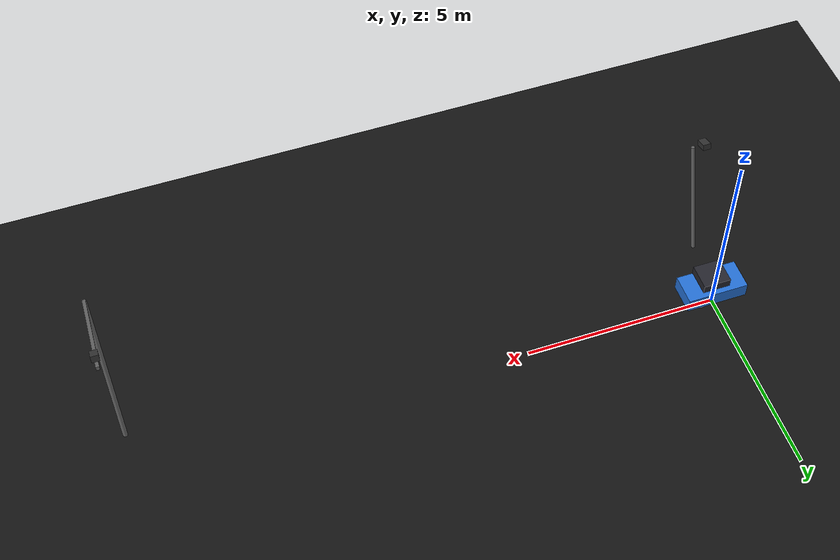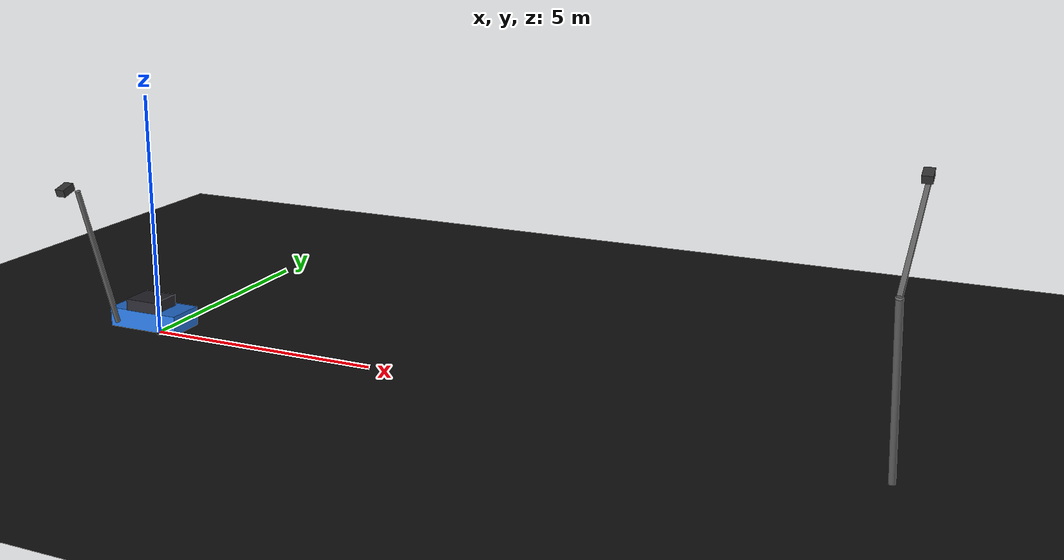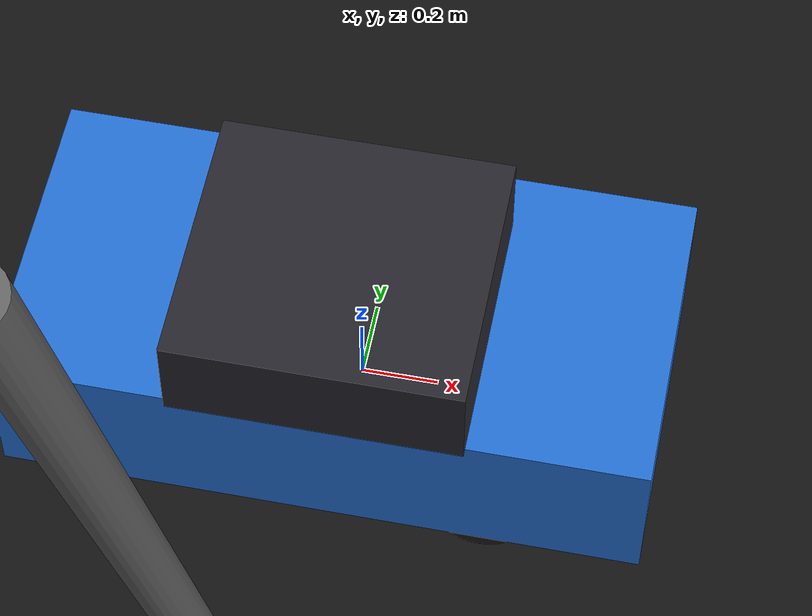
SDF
<sdf version="1.6">
 <world name="room_layout">
  <physics type="ode">
   <real_time_update_rate>1000.0</real_time_update_rate>
   <max_step>0.001</max_step>
   <real_time_factor>1</real_time_factor>
   <ode>
    <solver>
     <type>quick</type>
     <iters>150</iters>
     <precon_iters>0</precon_iters>
     <sor>1.400000</sor>
     <use_dynamic_moi_rescaling>1</use_dynamic_moi_rescaling>
    </solver>
    <constraints>
     <cfm>0.00001</cfm>
     <erp>0.2</erp>
     <contact_max_correcting_vel>2000.0</contact_max_correcting_vel>
     <contact_surface_layer>0.01000</contact_surface_layer>
    </constraints>
   </ode>
  </physics>
  <scene><ambient>0.6 0.6 0.6 1</ambient><background>0.7 0.7 0.7 1</background><shadows>true</shadows></scene>
  <light name="sun" type="directional">
   <pose>0 0 10 0 0 0</pose>
   <diffuse>0.8 0.8 0.8 1</diffuse>
   <specular>0.2 0.2 0.2 1</specular>
   <attenuation>
    <range>1000</range>
    <constant>0.9</constant>
    <linear>0.01</linear>
    <quadratic>0.001</quadratic>
   </attenuation>
   <direction>-0.5 0.1 -0.9</direction>
  </light>
  <model name="ground_plane">
   <static>true</static>
   <link name="link">
    <collision name="collision">
     <geometry><plane><normal>0 0 1</normal><size>200 200</size></plane></geometry>
    </collision>
    <visual name="visual">
     <geometry><plane><normal>0 0 1</normal><size>200 200</size></plane></geometry>
     <material>
      <ambient>0.05 0.05 0.05 1</ambient>
      <diffuse>0.08 0.08 0.08 1</diffuse>
      <specular>0.0 0.0 0.0 1</specular>
     </material>
    </visual>
   </link>
  </model>
  <model name="smart_car_1">
   <pose>0 -0.15 0.15 0 0 0</pose>
   <link name="chassis">
    <inertial>
     <mass>80.00</mass>
     <inertia><ixx>2.1333</ixx><ixy>0</ixy><iyy>17.0667</iyy><ixz>0</ixz><iyz>0</iyz><izz>17.0667</izz></inertia>
    </inertial>
    <collision name="chassis_collision">
     <pose>0 0 0.2500 0 0 0</pose>
     <geometry><box><size>1.600 0.800 0.400</size></box></geometry>
    </collision>
    <visual name="chassis_body">
     <pose>0 0 0.2500 0 0 0</pose>
     <geometry><box><size>1.600 0.800 0.400</size></box></geometry>
     <material><ambient>0.150 0.450 0.850 1</ambient><diffuse>0.150 0.450 0.850 1</diffuse></material>
    </visual>
    <visual name="cabin">
     <pose>0 -0.0800 0.5700 0 0 0</pose>
     <geometry><box><size>0.720 0.680 0.240</size></box></geometry>
     <material><ambient>0.1 0.1 0.12 1</ambient><diffuse>0.15 0.15 0.18 1</diffuse></material>
    </visual>
    <sensor name="camera" type="camera">
     <pose>0.6400 0 0.4800 0 0.3 0</pose>
     <always_on>true</always_on>
     <update_rate>30</update_rate>
     <visualize>true</visualize>
     <camera name="front_camera">
      <horizontal_fov>1.2</horizontal_fov>
      <image><width>640</width><height>480</height><format>R8G8B8</format></image>
      <clip><near>0.05</near><far>100</far></clip>
     </camera>
     <plugin name="gazebo_ros_camera" filename="libgazebo_ros_camera.so">
      <ros>
       <namespace>/smart_car_1</namespace>
       <remapping>~/image_raw:=camera/image_raw</remapping>
       <remapping>~/camera_info:=camera/camera_info</remapping>
      </ros>
      <camera_name>camera</camera_name>
      <frame_name>smart_car_1/camera_link</frame_name>
     </plugin>
    </sensor>
    <sensor name="lidar" type="ray">
     <pose>0.1600 0 0.5500 0 0 0</pose>
     <always_on>true</always_on>
     <update_rate>10</update_rate>
     <visualize>true</visualize>
     <ray>
      <scan>
       <horizontal>
        <samples>360</samples>
        <resolution>1</resolution>
        <min_angle>-3.14159</min_angle>
        <max_angle>3.14159</max_angle>
       </horizontal>
      </scan>
      <range><min>0.12</min><max>30.0</max><resolution>0.01</resolution></range>
      <noise><type>gaussian</type><mean>0.0</mean><stddev>0.01</stddev></noise>
     </ray>
     <plugin name="gazebo_ros_ray_sensor" filename="libgazebo_ros_ray_sensor.so">
      <ros><namespace>/smart_car_1</namespace><remapping>~/out:=scan</remapping></ros>
      <output_type>sensor_msgs/LaserScan</output_type>
      <frame_name>smart_car_1/lidar_link</frame_name>
     </plugin>
    </sensor>
    <sensor name="imu_sensor" type="imu">
     <pose>0 0 0.2000 0 0 0</pose>
     <always_on>true</always_on>
     <update_rate>200</update_rate>
     <plugin name="gazebo_ros_imu_sensor" filename="libgazebo_ros_imu_sensor.so">
      <ros><namespace>/smart_car_1</namespace><remapping>~/out:=imu/data</remapping></ros>
      <frame_name>smart_car_1/imu_link</frame_name>
      <initial_orientation_as_reference>false</initial_orientation_as_reference>
     </plugin>
    </sensor>
   </link>
   <link name="left_wheel_link">
    <pose>0.4000 0.3500 0.1000 0 0 0</pose>
    <inertial>
     <mass>2.00</mass>
     <inertia>
      <ixx>0.005067</ixx>
      <iyy>0.010000</iyy>
      <izz>0.005067</izz>
      <ixy>0</ixy>
      <ixz>0</ixz>
      <iyz>0</iyz>
     </inertia>
    </inertial>
    <collision name="collision">
     <pose>0 0 0 1.5707963 0 0</pose>
     <geometry><cylinder><radius>0.1000</radius><length>0.0800</length></cylinder></geometry>
     <surface>
      <friction><ode><mu>1.0</mu><mu2>1.0</mu2></ode></friction>
      <contact><ode><min_depth>0.001</min_depth><kp>1e8</kp></ode></contact>
     </surface>
    </collision>
    <visual name="visual">
     <pose>0 0 0 1.5707963 0 0</pose>
     <geometry><cylinder><radius>0.1000</radius><length>0.0800</length></cylinder></geometry>
     <material><ambient>0.05 0.05 0.05 1</ambient><diffuse>0.1 0.1 0.1 1</diffuse></material>
    </visual>
   </link>
   <joint name="left_wheel_joint" type="revolute">
    <parent>chassis</parent>
    <child>left_wheel_link</child>
    <axis><xyz>0 1 0</xyz><dynamics><friction>0.1</friction></dynamics></axis>
   </joint>
   <link name="right_wheel_link">
    <pose>0.4000 -0.3500 0.1000 0 0 0</pose>
    <inertial>
     <mass>2.00</mass>
     <inertia>
      <ixx>0.005067</ixx>
      <iyy>0.010000</iyy>
      <izz>0.005067</izz>
      <ixy>0</ixy>
      <ixz>0</ixz>
      <iyz>0</iyz>
     </inertia>
    </inertial>
    <collision name="collision">
     <pose>0 0 0 1.5707963 0 0</pose>
     <geometry><cylinder><radius>0.1000</radius><length>0.0800</length></cylinder></geometry>
     <surface>
      <friction><ode><mu>1.0</mu><mu2>1.0</mu2></ode></friction>
      <contact><ode><min_depth>0.001</min_depth><kp>1e8</kp></ode></contact>
     </surface>
    </collision>
    <visual name="visual">
     <pose>0 0 0 1.5707963 0 0</pose>
     <geometry><cylinder><radius>0.1000</radius><length>0.0800</length></cylinder></geometry>
     <material><ambient>0.05 0.05 0.05 1</ambient><diffuse>0.1 0.1 0.1 1</diffuse></material>
    </visual>
   </link>
   <joint name="right_wheel_joint" type="revolute">
    <parent>chassis</parent>
    <child>right_wheel_link</child>
    <axis><xyz>0 1 0</xyz><dynamics><friction>0.1</friction></dynamics></axis>
   </joint>
   <link name="caster_link">
    <pose>-0.4000 0 0.0600 0 0 0</pose>
    <inertial>
     <mass>0.5</mass>
     <inertia><ixx>0.001</ixx><iyy>0.001</iyy><izz>0.001</izz><ixy>0</ixy><ixz>0</ixz><iyz>0</iyz></inertia>
    </inertial>
    <collision name="collision">
     <geometry><sphere><radius>0.0600</radius></sphere></geometry>
     <surface>
      <friction><ode><mu>0.0</mu><mu2>0.0</mu2></ode></friction>
      <contact><ode><min_depth>0.001</min_depth><kp>1e8</kp></ode></contact>
     </surface>
    </collision>
    <visual name="visual">
     <geometry><sphere><radius>0.0600</radius></sphere></geometry>
     <material><ambient>0.2 0.2 0.2 1</ambient><diffuse>0.3 0.3 0.3 1</diffuse></material>
    </visual>
   </link>
   <joint name="caster_joint" type="fixed"><parent>chassis</parent><child>caster_link</child></joint>
   <plugin name="diff_drive" filename="libgazebo_ros_diff_drive.so">
    <ros>
     <namespace>/smart_car_1</namespace>
     <remapping>cmd_vel:=cmd_vel</remapping>
     <remapping>odom:=odom</remapping>
    </ros>
    <update_rate>100</update_rate>
    <left_joint>left_wheel_joint</left_joint>
    <right_joint>right_wheel_joint</right_joint>
    <wheel_separation>0.7000</wheel_separation>
    <wheel_diameter>0.2000</wheel_diameter>
    <max_wheel_torque>12.00</max_wheel_torque>
    <max_wheel_acceleration>40.00</max_wheel_acceleration>
    <publish_odom>true</publish_odom>
    <publish_odom_tf>true</publish_odom_tf>
    <publish_wheel_tf>true</publish_wheel_tf>
    <odometry_frame>smart_car_1_odom</odometry_frame>
    <robot_base_frame>smart_car_1/base_link</robot_base_frame>
   </plugin>
  </model>
  <model name="speed_cam">
   <static>true</static>
   <pose>0 -2.2 3.5 0 -0.3 1.5708</pose>
   <link name="link">
    <visual name="pole">
     <pose>0 0 -1.5 0 0 0</pose>
     <geometry><cylinder><radius>0.05</radius><length>3.0</length></cylinder></geometry>
     <material><ambient>0.3 0.3 0.3 1</ambient><diffuse>0.4 0.4 0.4 1</diffuse></material>
    </visual>
    <collision name="pole_collision">
     <pose>0 0 -1.5 0 0 0</pose>
     <geometry><cylinder><radius>0.05</radius><length>3.0</length></cylinder></geometry>
    </collision>
    <visual name="camera_box">
     <pose>0 0.3 0 0 0 0</pose>
     <geometry><box><size>0.3 0.2 0.15</size></box></geometry>
     <material><ambient>0.1 0.1 0.1 1</ambient><diffuse>0.2 0.2 0.2 1</diffuse></material>
    </visual>
    <sensor name="speed_camera_sensor" type="camera">
     <pose>0 0.3 0 0 -0.3 0</pose>
     <always_on>true</always_on>
     <update_rate>30</update_rate>
     <visualize>true</visualize>
     <camera name="speed_cam">
      <horizontal_fov>1.0</horizontal_fov>
      <image><width>640</width><height>480</height><format>R8G8B8</format></image>
      <clip><near>0.05</near><far>100</far></clip>
     </camera>
     <plugin name="gazebo_ros_camera" filename="libgazebo_ros_camera.so">
      <ros>
       <namespace>/speed_cam</namespace>
       <remapping>~/image_raw:=camera/image_raw</remapping>
       <remapping>~/camera_info:=camera/camera_info</remapping>
      </ros>
      <camera_name>speed_cam</camera_name>
      <frame_name>speed_cam/camera_link</frame_name>
     </plugin>
    </sensor>
   </link>
  </model>
  <model name="intersection_cam">
   <static>true</static>
   <pose>15 -2.5 3.5 0 -0.4 1.5708</pose>
   <link name="link">
    <visual name="pole">
     <pose>0 0 -2.0 0 0 0</pose>
     <geometry><cylinder><radius>0.06</radius><length>4.0</length></cylinder></geometry>
     <material><ambient>0.3 0.3 0.3 1</ambient><diffuse>0.4 0.4 0.4 1</diffuse></material>
    </visual>
    <collision name="pole_collision">
     <pose>0 0 -2.0 0 0 0</pose>
     <geometry><cylinder><radius>0.06</radius><length>4.0</length></cylinder></geometry>
    </collision>
    <visual name="arm">
     <pose>1.5 0 0 0 0 0</pose>
     <geometry><box><size>3.0 0.08 0.08</size></box></geometry>
     <material><ambient>0.3 0.3 0.3 1</ambient><diffuse>0.4 0.4 0.4 1</diffuse></material>
    </visual>
    <visual name="camera_box">
     <pose>2.8 0 0.2 0 0 0</pose>
     <geometry><box><size>0.25 0.18 0.15</size></box></geometry>
     <material><ambient>0.1 0.1 0.1 1</ambient><diffuse>0.2 0.2 0.2 1</diffuse></material>
    </visual>
    <sensor name="intersection_camera_sensor" type="camera">
     <pose>2.8 0 0.2 0 -0.4 0</pose>
     <always_on>true</always_on>
     <update_rate>30</update_rate>
     <visualize>true</visualize>
     <camera name="intersection_cam">
      <horizontal_fov>1.4</horizontal_fov>
      <image><width>800</width><height>600</height><format>R8G8B8</format></image>
      <clip><near>0.05</near><far>150</far></clip>
     </camera>
     <plugin name="gazebo_ros_camera" filename="libgazebo_ros_camera.so">
      <ros>
       <namespace>/intersection_cam</namespace>
       <remapping>~/image_raw:=camera/image_raw</remapping>
       <remapping>~/camera_info:=camera/camera_info</remapping>
      </ros>
      <camera_name>intersection_cam</camera_name>
      <frame_name>intersection_cam/camera_link</frame_name>
     </plugin>
    </sensor>
   </link>
  </model>
  <plugin name="gazebo_ros_init" filename="libgazebo_ros_init.so"/>
  <plugin name="gazebo_ros_factory" filename="libgazebo_ros_factory.so"/>
  <plugin name="gazebo_ros_state" filename="libgazebo_ros_state.so"/>
 </world>
</sdf>
